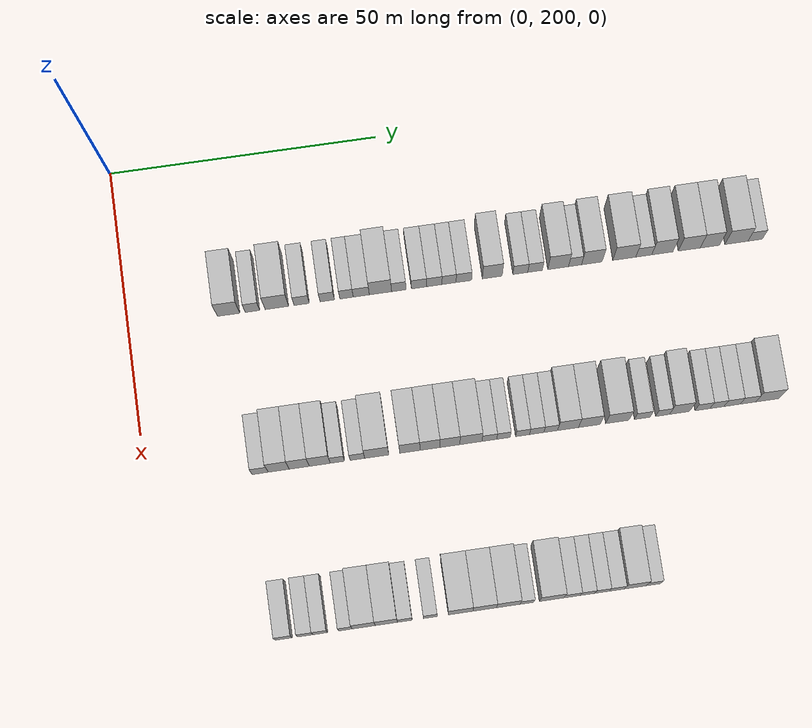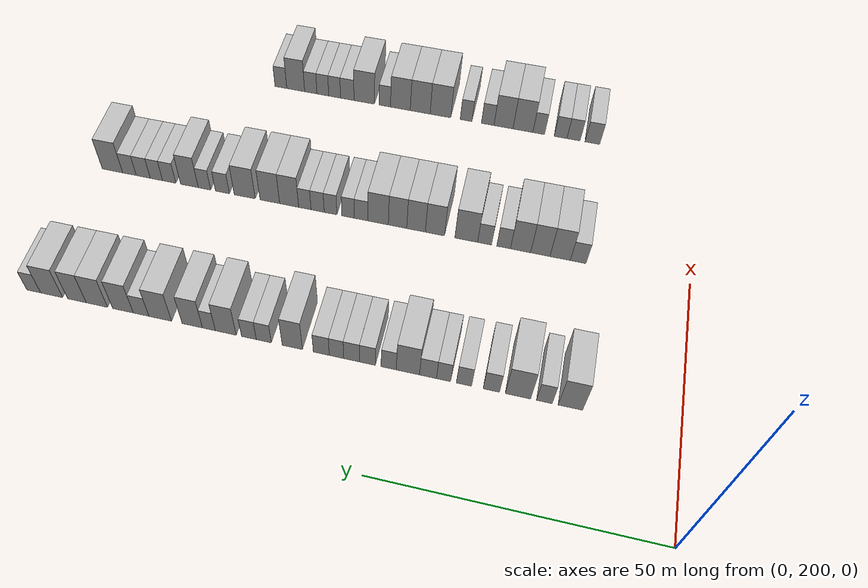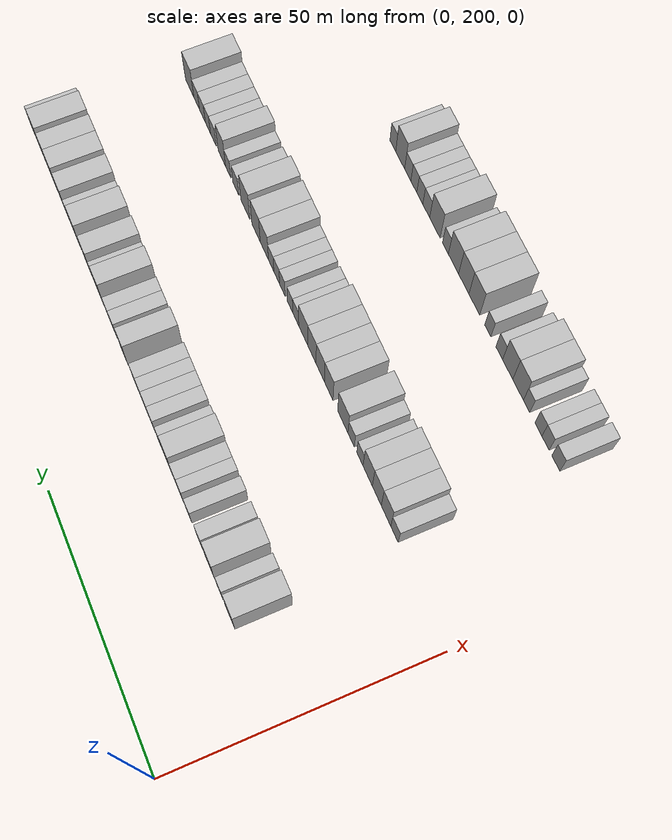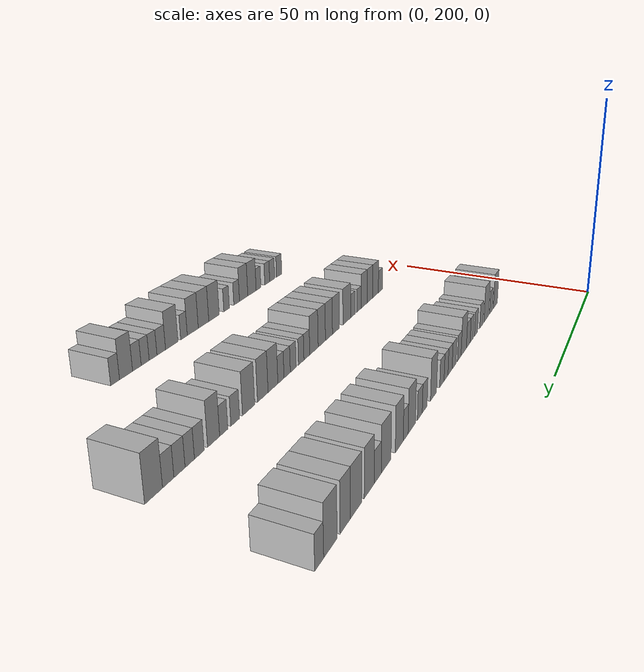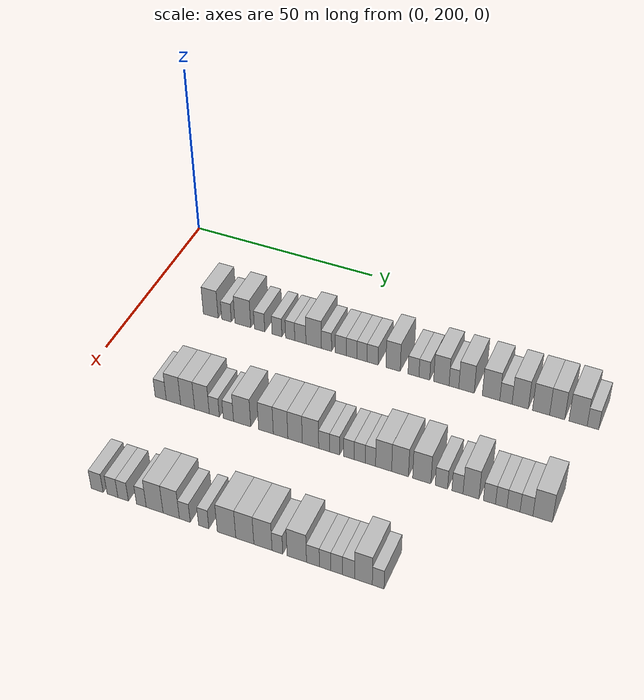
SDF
<sdf version="1.6">
 <world name="default">
  <model name="building_166">
   <static>1</static>
   <pose>25.0000 218.6222 0 0.000000 0.000000 0.000000</pose>
   <link name="link">
    <pose>0 0 4.50 0 0 0</pose>
    <collision name="collision"><geometry><box><size>10.0000 4.1430 9.0000</size></box></geometry></collision>
    <visual name="visual">
     <cast_shadows>0</cast_shadows>
     <geometry><box><size>10.0000 4.1430 9.0000</size></box></geometry>
     <material>
      <script>
       <uri>model://HANNAS_wall/materials/scripts</uri>
       <uri>model://HANNAS_wall/materials/textures</uri>
       <name>vrc/HANNAS_wall</name>
      </script>
     </material>
    </visual>
   </link>
  </model>
  <model name="building_167">
   <static>1</static>
   <pose>25.0000 223.0322 0 0.000000 0.000000 0.000000</pose>
   <link name="link">
    <pose>0 0 3.00 0 0 0</pose>
    <collision name="collision"><geometry><box><size>10.0000 2.6770 6.0000</size></box></geometry></collision>
    <visual name="visual">
     <cast_shadows>0</cast_shadows>
     <geometry><box><size>10.0000 2.6770 6.0000</size></box></geometry>
     <material>
      <script>
       <uri>model://HANNAS_wall/materials/scripts</uri>
       <uri>model://HANNAS_wall/materials/textures</uri>
       <name>vrc/HANNAS_wall</name>
      </script>
     </material>
    </visual>
   </link>
  </model>
  <model name="building_168">
   <static>1</static>
   <pose>25.0000 227.5489 0 0.000000 0.000000 0.000000</pose>
   <link name="link">
    <pose>0 0 4.50 0 0 0</pose>
    <collision name="collision"><geometry><box><size>10.0000 4.3564 9.0000</size></box></geometry></collision>
    <visual name="visual">
     <cast_shadows>0</cast_shadows>
     <geometry><box><size>10.0000 4.3564 9.0000</size></box></geometry>
     <material>
      <script>
       <uri>model://HANNAS_wall/materials/scripts</uri>
       <uri>model://HANNAS_wall/materials/textures</uri>
       <name>vrc/HANNAS_wall</name>
      </script>
     </material>
    </visual>
   </link>
  </model>
  <model name="building_169">
   <static>1</static>
   <pose>25.0000 232.1427 0 0.000000 0.000000 0.000000</pose>
   <link name="link">
    <pose>0 0 3.00 0 0 0</pose>
    <collision name="collision"><geometry><box><size>10.0000 2.8312 6.0000</size></box></geometry></collision>
    <visual name="visual">
     <cast_shadows>0</cast_shadows>
     <geometry><box><size>10.0000 2.8312 6.0000</size></box></geometry>
     <material>
      <script>
       <uri>model://HANNAS_wall/materials/scripts</uri>
       <uri>model://HANNAS_wall/materials/textures</uri>
       <name>vrc/HANNAS_wall</name>
      </script>
     </material>
    </visual>
   </link>
  </model>
  <model name="building_170">
   <static>1</static>
   <pose>25.0000 236.8923 0 0.000000 0.000000 0.000000</pose>
   <link name="link">
    <pose>0 0 3.00 0 0 0</pose>
    <collision name="collision"><geometry><box><size>10.0000 2.6681 6.0000</size></box></geometry></collision>
    <visual name="visual">
     <cast_shadows>0</cast_shadows>
     <geometry><box><size>10.0000 2.6681 6.0000</size></box></geometry>
     <material>
      <script>
       <uri>model://HANNAS_wall/materials/scripts</uri>
       <uri>model://HANNAS_wall/materials/textures</uri>
       <name>vrc/HANNAS_wall</name>
      </script>
     </material>
    </visual>
   </link>
  </model>
  <model name="building_171">
   <static>1</static>
   <pose>25.0000 240.4660 0 0.000000 0.000000 0.000000</pose>
   <link name="link">
    <pose>0 0 3.00 0 0 0</pose>
    <collision name="collision"><geometry><box><size>10.0000 2.4793 6.0000</size></box></geometry></collision>
    <visual name="visual">
     <cast_shadows>0</cast_shadows>
     <geometry><box><size>10.0000 2.4793 6.0000</size></box></geometry>
     <material>
      <script>
       <uri>model://HANNAS_wall/materials/scripts</uri>
       <uri>model://HANNAS_wall/materials/textures</uri>
       <name>vrc/HANNAS_wall</name>
      </script>
     </material>
    </visual>
   </link>
  </model>
  <model name="building_172">
   <static>1</static>
   <pose>25.0000 243.2002 0 0.000000 0.000000 0.000000</pose>
   <link name="link">
    <pose>0 0 3.00 0 0 0</pose>
    <collision name="collision"><geometry><box><size>10.0000 2.9892 6.0000</size></box></geometry></collision>
    <visual name="visual">
     <cast_shadows>0</cast_shadows>
     <geometry><box><size>10.0000 2.9892 6.0000</size></box></geometry>
     <material>
      <script>
       <uri>model://HANNAS_wall/materials/scripts</uri>
       <uri>model://HANNAS_wall/materials/textures</uri>
       <name>vrc/HANNAS_wall</name>
      </script>
     </material>
    </visual>
   </link>
  </model>
  <model name="building_173">
   <static>1</static>
   <pose>25.0000 246.7606 0 0.000000 0.000000 0.000000</pose>
   <link name="link">
    <pose>0 0 4.50 0 0 0</pose>
    <collision name="collision"><geometry><box><size>10.0000 4.1317 9.0000</size></box></geometry></collision>
    <visual name="visual">
     <cast_shadows>0</cast_shadows>
     <geometry><box><size>10.0000 4.1317 9.0000</size></box></geometry>
     <material>
      <script>
       <uri>model://HANNAS_wall/materials/scripts</uri>
       <uri>model://HANNAS_wall/materials/textures</uri>
       <name>vrc/HANNAS_wall</name>
      </script>
     </material>
    </visual>
   </link>
  </model>
  <model name="building_174">
   <static>1</static>
   <pose>25.0000 250.1740 0 0.000000 0.000000 0.000000</pose>
   <link name="link">
    <pose>0 0 3.00 0 0 0</pose>
    <collision name="collision"><geometry><box><size>10.0000 2.6950 6.0000</size></box></geometry></collision>
    <visual name="visual">
     <cast_shadows>0</cast_shadows>
     <geometry><box><size>10.0000 2.6950 6.0000</size></box></geometry>
     <material>
      <script>
       <uri>model://HANNAS_wall/materials/scripts</uri>
       <uri>model://HANNAS_wall/materials/textures</uri>
       <name>vrc/HANNAS_wall</name>
      </script>
     </material>
    </visual>
   </link>
  </model>
  <model name="building_175">
   <static>1</static>
   <pose>25.0000 253.9454 0 0.000000 0.000000 0.000000</pose>
   <link name="link">
    <pose>0 0 3.00 0 0 0</pose>
    <collision name="collision"><geometry><box><size>10.0000 2.8477 6.0000</size></box></geometry></collision>
    <visual name="visual">
     <cast_shadows>0</cast_shadows>
     <geometry><box><size>10.0000 2.8477 6.0000</size></box></geometry>
     <material>
      <script>
       <uri>model://HANNAS_wall/materials/scripts</uri>
       <uri>model://HANNAS_wall/materials/textures</uri>
       <name>vrc/HANNAS_wall</name>
      </script>
     </material>
    </visual>
   </link>
  </model>
  <model name="building_176">
   <static>1</static>
   <pose>25.0000 256.7983 0 0.000000 0.000000 0.000000</pose>
   <link name="link">
    <pose>0 0 3.00 0 0 0</pose>
    <collision name="collision"><geometry><box><size>10.0000 2.8579 6.0000</size></box></geometry></collision>
    <visual name="visual">
     <cast_shadows>0</cast_shadows>
     <geometry><box><size>10.0000 2.8579 6.0000</size></box></geometry>
     <material>
      <script>
       <uri>model://HANNAS_wall/materials/scripts</uri>
       <uri>model://HANNAS_wall/materials/textures</uri>
       <name>vrc/HANNAS_wall</name>
      </script>
     </material>
    </visual>
   </link>
  </model>
  <model name="building_177">
   <static>1</static>
   <pose>25.0000 259.5301 0 0.000000 0.000000 0.000000</pose>
   <link name="link">
    <pose>0 0 3.00 0 0 0</pose>
    <collision name="collision"><geometry><box><size>10.0000 2.6057 6.0000</size></box></geometry></collision>
    <visual name="visual">
     <cast_shadows>0</cast_shadows>
     <geometry><box><size>10.0000 2.6057 6.0000</size></box></geometry>
     <material>
      <script>
       <uri>model://HANNAS_wall/materials/scripts</uri>
       <uri>model://HANNAS_wall/materials/textures</uri>
       <name>vrc/HANNAS_wall</name>
      </script>
     </material>
    </visual>
   </link>
  </model>
  <model name="building_178">
   <static>1</static>
   <pose>25.0000 262.2731 0 0.000000 0.000000 0.000000</pose>
   <link name="link">
    <pose>0 0 3.00 0 0 0</pose>
    <collision name="collision"><geometry><box><size>10.0000 2.8803 6.0000</size></box></geometry></collision>
    <visual name="visual">
     <cast_shadows>0</cast_shadows>
     <geometry><box><size>10.0000 2.8803 6.0000</size></box></geometry>
     <material>
      <script>
       <uri>model://HANNAS_wall/materials/scripts</uri>
       <uri>model://HANNAS_wall/materials/textures</uri>
       <name>vrc/HANNAS_wall</name>
      </script>
     </material>
    </visual>
   </link>
  </model>
  <model name="building_179">
   <static>1</static>
   <pose>25.0000 267.5606 0 0.000000 0.000000 0.000000</pose>
   <link name="link">
    <pose>0 0 4.50 0 0 0</pose>
    <collision name="collision"><geometry><box><size>10.0000 3.6946 9.0000</size></box></geometry></collision>
    <visual name="visual">
     <cast_shadows>0</cast_shadows>
     <geometry><box><size>10.0000 3.6946 9.0000</size></box></geometry>
     <material>
      <script>
       <uri>model://HANNAS_wall/materials/scripts</uri>
       <uri>model://HANNAS_wall/materials/textures</uri>
       <name>vrc/HANNAS_wall</name>
      </script>
     </material>
    </visual>
   </link>
  </model>
  <model name="building_180">
   <static>1</static>
   <pose>25.0000 272.7976 0 0.000000 0.000000 0.000000</pose>
   <link name="link">
    <pose>0 0 3.00 0 0 0</pose>
    <collision name="collision"><geometry><box><size>10.0000 2.7793 6.0000</size></box></geometry></collision>
    <visual name="visual">
     <cast_shadows>0</cast_shadows>
     <geometry><box><size>10.0000 2.7793 6.0000</size></box></geometry>
     <material>
      <script>
       <uri>model://HANNAS_wall/materials/scripts</uri>
       <uri>model://HANNAS_wall/materials/textures</uri>
       <name>vrc/HANNAS_wall</name>
      </script>
     </material>
    </visual>
   </link>
  </model>
  <model name="building_181">
   <static>1</static>
   <pose>25.0000 275.5544 0 0.000000 0.000000 0.000000</pose>
   <link name="link">
    <pose>0 0 3.00 0 0 0</pose>
    <collision name="collision"><geometry><box><size>10.0000 2.7344 6.0000</size></box></geometry></collision>
    <visual name="visual">
     <cast_shadows>0</cast_shadows>
     <geometry><box><size>10.0000 2.7344 6.0000</size></box></geometry>
     <material>
      <script>
       <uri>model://HANNAS_wall/materials/scripts</uri>
       <uri>model://HANNAS_wall/materials/textures</uri>
       <name>vrc/HANNAS_wall</name>
      </script>
     </material>
    </visual>
   </link>
  </model>
  <model name="building_182">
   <static>1</static>
   <pose>25.0000 279.8623 0 0.000000 0.000000 0.000000</pose>
   <link name="link">
    <pose>0 0 4.50 0 0 0</pose>
    <collision name="collision"><geometry><box><size>10.0000 3.8812 9.0000</size></box></geometry></collision>
    <visual name="visual">
     <cast_shadows>0</cast_shadows>
     <geometry><box><size>10.0000 3.8812 9.0000</size></box></geometry>
     <material>
      <script>
       <uri>model://HANNAS_wall/materials/scripts</uri>
       <uri>model://HANNAS_wall/materials/textures</uri>
       <name>vrc/HANNAS_wall</name>
      </script>
     </material>
    </visual>
   </link>
  </model>
  <model name="building_183">
   <static>1</static>
   <pose>25.0000 283.0174 0 0.000000 0.000000 0.000000</pose>
   <link name="link">
    <pose>0 0 3.00 0 0 0</pose>
    <collision name="collision"><geometry><box><size>10.0000 2.4290 6.0000</size></box></geometry></collision>
    <visual name="visual">
     <cast_shadows>0</cast_shadows>
     <geometry><box><size>10.0000 2.4290 6.0000</size></box></geometry>
     <material>
      <script>
       <uri>model://HANNAS_wall/materials/scripts</uri>
       <uri>model://HANNAS_wall/materials/textures</uri>
       <name>vrc/HANNAS_wall</name>
      </script>
     </material>
    </visual>
   </link>
  </model>
  <model name="building_184">
   <static>1</static>
   <pose>25.0000 286.1537 0 0.000000 0.000000 0.000000</pose>
   <link name="link">
    <pose>0 0 4.50 0 0 0</pose>
    <collision name="collision"><geometry><box><size>10.0000 3.8438 9.0000</size></box></geometry></collision>
    <visual name="visual">
     <cast_shadows>0</cast_shadows>
     <geometry><box><size>10.0000 3.8438 9.0000</size></box></geometry>
     <material>
      <script>
       <uri>model://HANNAS_wall/materials/scripts</uri>
       <uri>model://HANNAS_wall/materials/textures</uri>
       <name>vrc/HANNAS_wall</name>
      </script>
     </material>
    </visual>
   </link>
  </model>
  <model name="building_185">
   <static>1</static>
   <pose>25.0000 292.2350 0 0.000000 0.000000 0.000000</pose>
   <link name="link">
    <pose>0 0 4.50 0 0 0</pose>
    <collision name="collision"><geometry><box><size>10.0000 4.3187 9.0000</size></box></geometry></collision>
    <visual name="visual">
     <cast_shadows>0</cast_shadows>
     <geometry><box><size>10.0000 4.3187 9.0000</size></box></geometry>
     <material>
      <script>
       <uri>model://HANNAS_wall/materials/scripts</uri>
       <uri>model://HANNAS_wall/materials/textures</uri>
       <name>vrc/HANNAS_wall</name>
      </script>
     </material>
    </visual>
   </link>
  </model>
  <model name="building_186">
   <static>1</static>
   <pose>25.0000 295.8857 0 0.000000 0.000000 0.000000</pose>
   <link name="link">
    <pose>0 0 3.00 0 0 0</pose>
    <collision name="collision"><geometry><box><size>10.0000 2.9826 6.0000</size></box></geometry></collision>
    <visual name="visual">
     <cast_shadows>0</cast_shadows>
     <geometry><box><size>10.0000 2.9826 6.0000</size></box></geometry>
     <material>
      <script>
       <uri>model://HANNAS_wall/materials/scripts</uri>
       <uri>model://HANNAS_wall/materials/textures</uri>
       <name>vrc/HANNAS_wall</name>
      </script>
     </material>
    </visual>
   </link>
  </model>
  <model name="building_187">
   <static>1</static>
   <pose>25.0000 299.3654 0 0.000000 0.000000 0.000000</pose>
   <link name="link">
    <pose>0 0 4.50 0 0 0</pose>
    <collision name="collision"><geometry><box><size>10.0000 3.9769 9.0000</size></box></geometry></collision>
    <visual name="visual">
     <cast_shadows>0</cast_shadows>
     <geometry><box><size>10.0000 3.9769 9.0000</size></box></geometry>
     <material>
      <script>
       <uri>model://HANNAS_wall/materials/scripts</uri>
       <uri>model://HANNAS_wall/materials/textures</uri>
       <name>vrc/HANNAS_wall</name>
      </script>
     </material>
    </visual>
   </link>
  </model>
  <model name="building_188">
   <static>1</static>
   <pose>25.0000 304.4196 0 0.000000 0.000000 0.000000</pose>
   <link name="link">
    <pose>0 0 4.50 0 0 0</pose>
    <collision name="collision"><geometry><box><size>10.0000 4.1314 9.0000</size></box></geometry></collision>
    <visual name="visual">
     <cast_shadows>0</cast_shadows>
     <geometry><box><size>10.0000 4.1314 9.0000</size></box></geometry>
     <material>
      <script>
       <uri>model://HANNAS_wall/materials/scripts</uri>
       <uri>model://HANNAS_wall/materials/textures</uri>
       <name>vrc/HANNAS_wall</name>
      </script>
     </material>
    </visual>
   </link>
  </model>
  <model name="building_189">
   <static>1</static>
   <pose>25.0000 308.2958 0 0.000000 0.000000 0.000000</pose>
   <link name="link">
    <pose>0 0 4.50 0 0 0</pose>
    <collision name="collision"><geometry><box><size>10.0000 3.6211 9.0000</size></box></geometry></collision>
    <visual name="visual">
     <cast_shadows>0</cast_shadows>
     <geometry><box><size>10.0000 3.6211 9.0000</size></box></geometry>
     <material>
      <script>
       <uri>model://HANNAS_wall/materials/scripts</uri>
       <uri>model://HANNAS_wall/materials/textures</uri>
       <name>vrc/HANNAS_wall</name>
      </script>
     </material>
    </visual>
   </link>
  </model>
  <model name="building_190">
   <static>1</static>
   <pose>25.0000 313.2651 0 0.000000 0.000000 0.000000</pose>
   <link name="link">
    <pose>0 0 4.50 0 0 0</pose>
    <collision name="collision"><geometry><box><size>10.0000 4.3174 9.0000</size></box></geometry></collision>
    <visual name="visual">
     <cast_shadows>0</cast_shadows>
     <geometry><box><size>10.0000 4.3174 9.0000</size></box></geometry>
     <material>
      <script>
       <uri>model://HANNAS_wall/materials/scripts</uri>
       <uri>model://HANNAS_wall/materials/textures</uri>
       <name>vrc/HANNAS_wall</name>
      </script>
     </material>
    </visual>
   </link>
  </model>
  <model name="building_191">
   <static>1</static>
   <pose>25.0000 316.7909 0 0.000000 0.000000 0.000000</pose>
   <link name="link">
    <pose>0 0 3.00 0 0 0</pose>
    <collision name="collision"><geometry><box><size>10.0000 2.7342 6.0000</size></box></geometry></collision>
    <visual name="visual">
     <cast_shadows>0</cast_shadows>
     <geometry><box><size>10.0000 2.7342 6.0000</size></box></geometry>
     <material>
      <script>
       <uri>model://HANNAS_wall/materials/scripts</uri>
       <uri>model://HANNAS_wall/materials/textures</uri>
       <name>vrc/HANNAS_wall</name>
      </script>
     </material>
    </visual>
   </link>
  </model>
  <model name="building_386">
   <static>1</static>
   <pose>55.0000 220.6845 0 0.000000 0.000000 0.000000</pose>
   <link name="link">
    <pose>0 0 3.00 0 0 0</pose>
    <collision name="collision"><geometry><box><size>10.0000 2.9409 6.0000</size></box></geometry></collision>
    <visual name="visual">
     <cast_shadows>0</cast_shadows>
     <geometry><box><size>10.0000 2.9409 6.0000</size></box></geometry>
     <material>
      <script>
       <uri>model://HANNAS_wall/materials/scripts</uri>
       <uri>model://HANNAS_wall/materials/textures</uri>
       <name>vrc/HANNAS_wall</name>
      </script>
     </material>
    </visual>
   </link>
  </model>
  <model name="building_387">
   <static>1</static>
   <pose>55.0000 224.0638 0 0.000000 0.000000 0.000000</pose>
   <link name="link">
    <pose>0 0 4.50 0 0 0</pose>
    <collision name="collision"><geometry><box><size>10.0000 3.8177 9.0000</size></box></geometry></collision>
    <visual name="visual">
     <cast_shadows>0</cast_shadows>
     <geometry><box><size>10.0000 3.8177 9.0000</size></box></geometry>
     <material>
      <script>
       <uri>model://HANNAS_wall/materials/scripts</uri>
       <uri>model://HANNAS_wall/materials/textures</uri>
       <name>vrc/HANNAS_wall</name>
      </script>
     </material>
    </visual>
   </link>
  </model>
  <model name="building_388">
   <static>1</static>
   <pose>55.0000 227.7985 0 0.000000 0.000000 0.000000</pose>
   <link name="link">
    <pose>0 0 4.50 0 0 0</pose>
    <collision name="collision"><geometry><box><size>10.0000 3.6518 9.0000</size></box></geometry></collision>
    <visual name="visual">
     <cast_shadows>0</cast_shadows>
     <geometry><box><size>10.0000 3.6518 9.0000</size></box></geometry>
     <material>
      <script>
       <uri>model://HANNAS_wall/materials/scripts</uri>
       <uri>model://HANNAS_wall/materials/textures</uri>
       <name>vrc/HANNAS_wall</name>
      </script>
     </material>
    </visual>
   </link>
  </model>
  <model name="building_389">
   <static>1</static>
   <pose>55.0000 231.5324 0 0.000000 0.000000 0.000000</pose>
   <link name="link">
    <pose>0 0 4.50 0 0 0</pose>
    <collision name="collision"><geometry><box><size>10.0000 3.8160 9.0000</size></box></geometry></collision>
    <visual name="visual">
     <cast_shadows>0</cast_shadows>
     <geometry><box><size>10.0000 3.8160 9.0000</size></box></geometry>
     <material>
      <script>
       <uri>model://HANNAS_wall/materials/scripts</uri>
       <uri>model://HANNAS_wall/materials/textures</uri>
       <name>vrc/HANNAS_wall</name>
      </script>
     </material>
    </visual>
   </link>
  </model>
  <model name="building_390">
   <static>1</static>
   <pose>55.0000 234.7448 0 0.000000 0.000000 0.000000</pose>
   <link name="link">
    <pose>0 0 3.00 0 0 0</pose>
    <collision name="collision"><geometry><box><size>10.0000 2.6088 6.0000</size></box></geometry></collision>
    <visual name="visual">
     <cast_shadows>0</cast_shadows>
     <geometry><box><size>10.0000 2.6088 6.0000</size></box></geometry>
     <material>
      <script>
       <uri>model://HANNAS_wall/materials/scripts</uri>
       <uri>model://HANNAS_wall/materials/textures</uri>
       <name>vrc/HANNAS_wall</name>
      </script>
     </material>
    </visual>
   </link>
  </model>
  <model name="building_391">
   <static>1</static>
   <pose>55.0000 238.3835 0 0.000000 0.000000 0.000000</pose>
   <link name="link">
    <pose>0 0 3.00 0 0 0</pose>
    <collision name="collision"><geometry><box><size>10.0000 2.6685 6.0000</size></box></geometry></collision>
    <visual name="visual">
     <cast_shadows>0</cast_shadows>
     <geometry><box><size>10.0000 2.6685 6.0000</size></box></geometry>
     <material>
      <script>
       <uri>model://HANNAS_wall/materials/scripts</uri>
       <uri>model://HANNAS_wall/materials/textures</uri>
       <name>vrc/HANNAS_wall</name>
      </script>
     </material>
    </visual>
   </link>
  </model>
  <model name="building_392">
   <static>1</static>
   <pose>55.0000 241.9121 0 0.000000 0.000000 0.000000</pose>
   <link name="link">
    <pose>0 0 4.50 0 0 0</pose>
    <collision name="collision"><geometry><box><size>10.0000 4.3886 9.0000</size></box></geometry></collision>
    <visual name="visual">
     <cast_shadows>0</cast_shadows>
     <geometry><box><size>10.0000 4.3886 9.0000</size></box></geometry>
     <material>
      <script>
       <uri>model://HANNAS_wall/materials/scripts</uri>
       <uri>model://HANNAS_wall/materials/textures</uri>
       <name>vrc/HANNAS_wall</name>
      </script>
     </material>
    </visual>
   </link>
  </model>
  <model name="building_393">
   <static>1</static>
   <pose>55.0000 247.9670 0 0.000000 0.000000 0.000000</pose>
   <link name="link">
    <pose>0 0 4.50 0 0 0</pose>
    <collision name="collision"><geometry><box><size>10.0000 3.7211 9.0000</size></box></geometry></collision>
    <visual name="visual">
     <cast_shadows>0</cast_shadows>
     <geometry><box><size>10.0000 3.7211 9.0000</size></box></geometry>
     <material>
      <script>
       <uri>model://HANNAS_wall/materials/scripts</uri>
       <uri>model://HANNAS_wall/materials/textures</uri>
       <name>vrc/HANNAS_wall</name>
      </script>
     </material>
    </visual>
   </link>
  </model>
  <model name="building_394">
   <static>1</static>
   <pose>55.0000 251.6501 0 0.000000 0.000000 0.000000</pose>
   <link name="link">
    <pose>0 0 4.50 0 0 0</pose>
    <collision name="collision"><geometry><box><size>10.0000 3.6452 9.0000</size></box></geometry></collision>
    <visual name="visual">
     <cast_shadows>0</cast_shadows>
     <geometry><box><size>10.0000 3.6452 9.0000</size></box></geometry>
     <material>
      <script>
       <uri>model://HANNAS_wall/materials/scripts</uri>
       <uri>model://HANNAS_wall/materials/textures</uri>
       <name>vrc/HANNAS_wall</name>
      </script>
     </material>
    </visual>
   </link>
  </model>
  <model name="building_395">
   <static>1</static>
   <pose>55.0000 255.2797 0 0.000000 0.000000 0.000000</pose>
   <link name="link">
    <pose>0 0 4.50 0 0 0</pose>
    <collision name="collision"><geometry><box><size>10.0000 3.6140 9.0000</size></box></geometry></collision>
    <visual name="visual">
     <cast_shadows>0</cast_shadows>
     <geometry><box><size>10.0000 3.6140 9.0000</size></box></geometry>
     <material>
      <script>
       <uri>model://HANNAS_wall/materials/scripts</uri>
       <uri>model://HANNAS_wall/materials/textures</uri>
       <name>vrc/HANNAS_wall</name>
      </script>
     </material>
    </visual>
   </link>
  </model>
  <model name="building_396">
   <static>1</static>
   <pose>55.0000 259.1114 0 0.000000 0.000000 0.000000</pose>
   <link name="link">
    <pose>0 0 4.50 0 0 0</pose>
    <collision name="collision"><geometry><box><size>10.0000 4.0493 9.0000</size></box></geometry></collision>
    <visual name="visual">
     <cast_shadows>0</cast_shadows>
     <geometry><box><size>10.0000 4.0493 9.0000</size></box></geometry>
     <material>
      <script>
       <uri>model://HANNAS_wall/materials/scripts</uri>
       <uri>model://HANNAS_wall/materials/textures</uri>
       <name>vrc/HANNAS_wall</name>
      </script>
     </material>
    </visual>
   </link>
  </model>
  <model name="building_397">
   <static>1</static>
   <pose>55.0000 262.4866 0 0.000000 0.000000 0.000000</pose>
   <link name="link">
    <pose>0 0 3.00 0 0 0</pose>
    <collision name="collision"><geometry><box><size>10.0000 2.7010 6.0000</size></box></geometry></collision>
    <visual name="visual">
     <cast_shadows>0</cast_shadows>
     <geometry><box><size>10.0000 2.7010 6.0000</size></box></geometry>
     <material>
      <script>
       <uri>model://HANNAS_wall/materials/scripts</uri>
       <uri>model://HANNAS_wall/materials/textures</uri>
       <name>vrc/HANNAS_wall</name>
      </script>
     </material>
    </visual>
   </link>
  </model>
  <model name="building_398">
   <static>1</static>
   <pose>55.0000 265.0640 0 0.000000 0.000000 0.000000</pose>
   <link name="link">
    <pose>0 0 3.00 0 0 0</pose>
    <collision name="collision"><geometry><box><size>10.0000 2.4538 6.0000</size></box></geometry></collision>
    <visual name="visual">
     <cast_shadows>0</cast_shadows>
     <geometry><box><size>10.0000 2.4538 6.0000</size></box></geometry>
     <material>
      <script>
       <uri>model://HANNAS_wall/materials/scripts</uri>
       <uri>model://HANNAS_wall/materials/textures</uri>
       <name>vrc/HANNAS_wall</name>
      </script>
     </material>
    </visual>
   </link>
  </model>
  <model name="building_399">
   <static>1</static>
   <pose>55.0000 268.5587 0 0.000000 0.000000 0.000000</pose>
   <link name="link">
    <pose>0 0 3.00 0 0 0</pose>
    <collision name="collision"><geometry><box><size>10.0000 2.5356 6.0000</size></box></geometry></collision>
    <visual name="visual">
     <cast_shadows>0</cast_shadows>
     <geometry><box><size>10.0000 2.5356 6.0000</size></box></geometry>
     <material>
      <script>
       <uri>model://HANNAS_wall/materials/scripts</uri>
       <uri>model://HANNAS_wall/materials/textures</uri>
       <name>vrc/HANNAS_wall</name>
      </script>
     </material>
    </visual>
   </link>
  </model>
  <model name="building_400">
   <static>1</static>
   <pose>55.0000 271.1538 0 0.000000 0.000000 0.000000</pose>
   <link name="link">
    <pose>0 0 3.00 0 0 0</pose>
    <collision name="collision"><geometry><box><size>10.0000 2.6547 6.0000</size></box></geometry></collision>
    <visual name="visual">
     <cast_shadows>0</cast_shadows>
     <geometry><box><size>10.0000 2.6547 6.0000</size></box></geometry>
     <material>
      <script>
       <uri>model://HANNAS_wall/materials/scripts</uri>
       <uri>model://HANNAS_wall/materials/textures</uri>
       <name>vrc/HANNAS_wall</name>
      </script>
     </material>
    </visual>
   </link>
  </model>
  <model name="building_401">
   <static>1</static>
   <pose>55.0000 273.7311 0 0.000000 0.000000 0.000000</pose>
   <link name="link">
    <pose>0 0 3.00 0 0 0</pose>
    <collision name="collision"><geometry><box><size>10.0000 2.4999 6.0000</size></box></geometry></collision>
    <visual name="visual">
     <cast_shadows>0</cast_shadows>
     <geometry><box><size>10.0000 2.4999 6.0000</size></box></geometry>
     <material>
      <script>
       <uri>model://HANNAS_wall/materials/scripts</uri>
       <uri>model://HANNAS_wall/materials/textures</uri>
       <name>vrc/HANNAS_wall</name>
      </script>
     </material>
    </visual>
   </link>
  </model>
  <model name="building_402">
   <static>1</static>
   <pose>55.0000 276.9073 0 0.000000 0.000000 0.000000</pose>
   <link name="link">
    <pose>0 0 4.50 0 0 0</pose>
    <collision name="collision"><geometry><box><size>10.0000 3.8527 9.0000</size></box></geometry></collision>
    <visual name="visual">
     <cast_shadows>0</cast_shadows>
     <geometry><box><size>10.0000 3.8527 9.0000</size></box></geometry>
     <material>
      <script>
       <uri>model://HANNAS_wall/materials/scripts</uri>
       <uri>model://HANNAS_wall/materials/textures</uri>
       <name>vrc/HANNAS_wall</name>
      </script>
     </material>
    </visual>
   </link>
  </model>
  <model name="building_403">
   <static>1</static>
   <pose>55.0000 280.8255 0 0.000000 0.000000 0.000000</pose>
   <link name="link">
    <pose>0 0 4.50 0 0 0</pose>
    <collision name="collision"><geometry><box><size>10.0000 3.9836 9.0000</size></box></geometry></collision>
    <visual name="visual">
     <cast_shadows>0</cast_shadows>
     <geometry><box><size>10.0000 3.9836 9.0000</size></box></geometry>
     <material>
      <script>
       <uri>model://HANNAS_wall/materials/scripts</uri>
       <uri>model://HANNAS_wall/materials/textures</uri>
       <name>vrc/HANNAS_wall</name>
      </script>
     </material>
    </visual>
   </link>
  </model>
  <model name="building_404">
   <static>1</static>
   <pose>55.0000 285.9674 0 0.000000 0.000000 0.000000</pose>
   <link name="link">
    <pose>0 0 4.50 0 0 0</pose>
    <collision name="collision"><geometry><box><size>10.0000 4.3002 9.0000</size></box></geometry></collision>
    <visual name="visual">
     <cast_shadows>0</cast_shadows>
     <geometry><box><size>10.0000 4.3002 9.0000</size></box></geometry>
     <material>
      <script>
       <uri>model://HANNAS_wall/materials/scripts</uri>
       <uri>model://HANNAS_wall/materials/textures</uri>
       <name>vrc/HANNAS_wall</name>
      </script>
     </material>
    </visual>
   </link>
  </model>
  <model name="building_405">
   <static>1</static>
   <pose>55.0000 290.5615 0 0.000000 0.000000 0.000000</pose>
   <link name="link">
    <pose>0 0 3.00 0 0 0</pose>
    <collision name="collision"><geometry><box><size>10.0000 2.8879 6.0000</size></box></geometry></collision>
    <visual name="visual">
     <cast_shadows>0</cast_shadows>
     <geometry><box><size>10.0000 2.8879 6.0000</size></box></geometry>
     <material>
      <script>
       <uri>model://HANNAS_wall/materials/scripts</uri>
       <uri>model://HANNAS_wall/materials/textures</uri>
       <name>vrc/HANNAS_wall</name>
      </script>
     </material>
    </visual>
   </link>
  </model>
  <model name="building_406">
   <static>1</static>
   <pose>55.0000 294.2959 0 0.000000 0.000000 0.000000</pose>
   <link name="link">
    <pose>0 0 3.00 0 0 0</pose>
    <collision name="collision"><geometry><box><size>10.0000 2.5809 6.0000</size></box></geometry></collision>
    <visual name="visual">
     <cast_shadows>0</cast_shadows>
     <geometry><box><size>10.0000 2.5809 6.0000</size></box></geometry>
     <material>
      <script>
       <uri>model://HANNAS_wall/materials/scripts</uri>
       <uri>model://HANNAS_wall/materials/textures</uri>
       <name>vrc/HANNAS_wall</name>
      </script>
     </material>
    </visual>
   </link>
  </model>
  <model name="building_407">
   <static>1</static>
   <pose>55.0000 297.4259 0 0.000000 0.000000 0.000000</pose>
   <link name="link">
    <pose>0 0 4.50 0 0 0</pose>
    <collision name="collision"><geometry><box><size>10.0000 3.6790 9.0000</size></box></geometry></collision>
    <visual name="visual">
     <cast_shadows>0</cast_shadows>
     <geometry><box><size>10.0000 3.6790 9.0000</size></box></geometry>
     <material>
      <script>
       <uri>model://HANNAS_wall/materials/scripts</uri>
       <uri>model://HANNAS_wall/materials/textures</uri>
       <name>vrc/HANNAS_wall</name>
      </script>
     </material>
    </visual>
   </link>
  </model>
  <model name="building_408">
   <static>1</static>
   <pose>55.0000 301.6578 0 0.000000 0.000000 0.000000</pose>
   <link name="link">
    <pose>0 0 3.00 0 0 0</pose>
    <collision name="collision"><geometry><box><size>10.0000 2.7849 6.0000</size></box></geometry></collision>
    <visual name="visual">
     <cast_shadows>0</cast_shadows>
     <geometry><box><size>10.0000 2.7849 6.0000</size></box></geometry>
     <material>
      <script>
       <uri>model://HANNAS_wall/materials/scripts</uri>
       <uri>model://HANNAS_wall/materials/textures</uri>
       <name>vrc/HANNAS_wall</name>
      </script>
     </material>
    </visual>
   </link>
  </model>
  <model name="building_409">
   <static>1</static>
   <pose>55.0000 304.3447 0 0.000000 0.000000 0.000000</pose>
   <link name="link">
    <pose>0 0 3.00 0 0 0</pose>
    <collision name="collision"><geometry><box><size>10.0000 2.5888 6.0000</size></box></geometry></collision>
    <visual name="visual">
     <cast_shadows>0</cast_shadows>
     <geometry><box><size>10.0000 2.5888 6.0000</size></box></geometry>
     <material>
      <script>
       <uri>model://HANNAS_wall/materials/scripts</uri>
       <uri>model://HANNAS_wall/materials/textures</uri>
       <name>vrc/HANNAS_wall</name>
      </script>
     </material>
    </visual>
   </link>
  </model>
  <model name="building_410">
   <static>1</static>
   <pose>55.0000 307.1229 0 0.000000 0.000000 0.000000</pose>
   <link name="link">
    <pose>0 0 3.00 0 0 0</pose>
    <collision name="collision"><geometry><box><size>10.0000 2.9676 6.0000</size></box></geometry></collision>
    <visual name="visual">
     <cast_shadows>0</cast_shadows>
     <geometry><box><size>10.0000 2.9676 6.0000</size></box></geometry>
     <material>
      <script>
       <uri>model://HANNAS_wall/materials/scripts</uri>
       <uri>model://HANNAS_wall/materials/textures</uri>
       <name>vrc/HANNAS_wall</name>
      </script>
     </material>
    </visual>
   </link>
  </model>
  <model name="building_411">
   <static>1</static>
   <pose>55.0000 310.0540 0 0.000000 0.000000 0.000000</pose>
   <link name="link">
    <pose>0 0 3.00 0 0 0</pose>
    <collision name="collision"><geometry><box><size>10.0000 2.8946 6.0000</size></box></geometry></collision>
    <visual name="visual">
     <cast_shadows>0</cast_shadows>
     <geometry><box><size>10.0000 2.8946 6.0000</size></box></geometry>
     <material>
      <script>
       <uri>model://HANNAS_wall/materials/scripts</uri>
       <uri>model://HANNAS_wall/materials/textures</uri>
       <name>vrc/HANNAS_wall</name>
      </script>
     </material>
    </visual>
   </link>
  </model>
  <model name="building_412">
   <static>1</static>
   <pose>55.0000 313.6736 0 0.000000 0.000000 0.000000</pose>
   <link name="link">
    <pose>0 0 4.50 0 0 0</pose>
    <collision name="collision"><geometry><box><size>10.0000 4.3445 9.0000</size></box></geometry></collision>
    <visual name="visual">
     <cast_shadows>0</cast_shadows>
     <geometry><box><size>10.0000 4.3445 9.0000</size></box></geometry>
     <material>
      <script>
       <uri>model://HANNAS_wall/materials/scripts</uri>
       <uri>model://HANNAS_wall/materials/textures</uri>
       <name>vrc/HANNAS_wall</name>
      </script>
     </material>
    </visual>
   </link>
  </model>
  <model name="building_622">
   <static>1</static>
   <pose>85.0000 221.1541 0 0.000000 0.000000 0.000000</pose>
   <link name="link">
    <pose>0 0 3.00 0 0 0</pose>
    <collision name="collision"><geometry><box><size>10.0000 2.9992 6.0000</size></box></geometry></collision>
    <visual name="visual">
     <cast_shadows>0</cast_shadows>
     <geometry><box><size>10.0000 2.9992 6.0000</size></box></geometry>
     <material>
      <script>
       <uri>model://HANNAS_wall/materials/scripts</uri>
       <uri>model://HANNAS_wall/materials/textures</uri>
       <name>vrc/HANNAS_wall</name>
      </script>
     </material>
    </visual>
   </link>
  </model>
  <model name="building_623">
   <static>1</static>
   <pose>85.0000 225.0027 0 0.000000 0.000000 0.000000</pose>
   <link name="link">
    <pose>0 0 3.00 0 0 0</pose>
    <collision name="collision"><geometry><box><size>10.0000 2.6979 6.0000</size></box></geometry></collision>
    <visual name="visual">
     <cast_shadows>0</cast_shadows>
     <geometry><box><size>10.0000 2.6979 6.0000</size></box></geometry>
     <material>
      <script>
       <uri>model://HANNAS_wall/materials/scripts</uri>
       <uri>model://HANNAS_wall/materials/textures</uri>
       <name>vrc/HANNAS_wall</name>
      </script>
     </material>
    </visual>
   </link>
  </model>
  <model name="building_624">
   <static>1</static>
   <pose>85.0000 227.6578 0 0.000000 0.000000 0.000000</pose>
   <link name="link">
    <pose>0 0 3.00 0 0 0</pose>
    <collision name="collision"><geometry><box><size>10.0000 2.6124 6.0000</size></box></geometry></collision>
    <visual name="visual">
     <cast_shadows>0</cast_shadows>
     <geometry><box><size>10.0000 2.6124 6.0000</size></box></geometry>
     <material>
      <script>
       <uri>model://HANNAS_wall/materials/scripts</uri>
       <uri>model://HANNAS_wall/materials/textures</uri>
       <name>vrc/HANNAS_wall</name>
      </script>
     </material>
    </visual>
   </link>
  </model>
  <model name="building_625">
   <static>1</static>
   <pose>85.0000 232.1707 0 0.000000 0.000000 0.000000</pose>
   <link name="link">
    <pose>0 0 3.00 0 0 0</pose>
    <collision name="collision"><geometry><box><size>10.0000 2.4134 6.0000</size></box></geometry></collision>
    <visual name="visual">
     <cast_shadows>0</cast_shadows>
     <geometry><box><size>10.0000 2.4134 6.0000</size></box></geometry>
     <material>
      <script>
       <uri>model://HANNAS_wall/materials/scripts</uri>
       <uri>model://HANNAS_wall/materials/textures</uri>
       <name>vrc/HANNAS_wall</name>
      </script>
     </material>
    </visual>
   </link>
  </model>
  <model name="building_626">
   <static>1</static>
   <pose>85.0000 235.4446 0 0.000000 0.000000 0.000000</pose>
   <link name="link">
    <pose>0 0 4.50 0 0 0</pose>
    <collision name="collision"><geometry><box><size>10.0000 4.1343 9.0000</size></box></geometry></collision>
    <visual name="visual">
     <cast_shadows>0</cast_shadows>
     <geometry><box><size>10.0000 4.1343 9.0000</size></box></geometry>
     <material>
      <script>
       <uri>model://HANNAS_wall/materials/scripts</uri>
       <uri>model://HANNAS_wall/materials/textures</uri>
       <name>vrc/HANNAS_wall</name>
      </script>
     </material>
    </visual>
   </link>
  </model>
  <model name="building_627">
   <static>1</static>
   <pose>85.0000 239.4942 0 0.000000 0.000000 0.000000</pose>
   <link name="link">
    <pose>0 0 4.50 0 0 0</pose>
    <collision name="collision"><geometry><box><size>10.0000 3.9650 9.0000</size></box></geometry></collision>
    <visual name="visual">
     <cast_shadows>0</cast_shadows>
     <geometry><box><size>10.0000 3.9650 9.0000</size></box></geometry>
     <material>
      <script>
       <uri>model://HANNAS_wall/materials/scripts</uri>
       <uri>model://HANNAS_wall/materials/textures</uri>
       <name>vrc/HANNAS_wall</name>
      </script>
     </material>
    </visual>
   </link>
  </model>
  <model name="building_628">
   <static>1</static>
   <pose>85.0000 242.7916 0 0.000000 0.000000 0.000000</pose>
   <link name="link">
    <pose>0 0 3.00 0 0 0</pose>
    <collision name="collision"><geometry><box><size>10.0000 2.6298 6.0000</size></box></geometry></collision>
    <visual name="visual">
     <cast_shadows>0</cast_shadows>
     <geometry><box><size>10.0000 2.6298 6.0000</size></box></geometry>
     <material>
      <script>
       <uri>model://HANNAS_wall/materials/scripts</uri>
       <uri>model://HANNAS_wall/materials/textures</uri>
       <name>vrc/HANNAS_wall</name>
      </script>
     </material>
    </visual>
   </link>
  </model>
  <model name="building_629">
   <static>1</static>
   <pose>85.0000 247.3448 0 0.000000 0.000000 0.000000</pose>
   <link name="link">
    <pose>0 0 3.00 0 0 0</pose>
    <collision name="collision"><geometry><box><size>10.0000 2.4765 6.0000</size></box></geometry></collision>
    <visual name="visual">
     <cast_shadows>0</cast_shadows>
     <geometry><box><size>10.0000 2.4765 6.0000</size></box></geometry>
     <material>
      <script>
       <uri>model://HANNAS_wall/materials/scripts</uri>
       <uri>model://HANNAS_wall/materials/textures</uri>
       <name>vrc/HANNAS_wall</name>
      </script>
     </material>
    </visual>
   </link>
  </model>
  <model name="building_630">
   <static>1</static>
   <pose>85.0000 252.7795 0 0.000000 0.000000 0.000000</pose>
   <link name="link">
    <pose>0 0 4.50 0 0 0</pose>
    <collision name="collision"><geometry><box><size>10.0000 4.3930 9.0000</size></box></geometry></collision>
    <visual name="visual">
     <cast_shadows>0</cast_shadows>
     <geometry><box><size>10.0000 4.3930 9.0000</size></box></geometry>
     <material>
      <script>
       <uri>model://HANNAS_wall/materials/scripts</uri>
       <uri>model://HANNAS_wall/materials/textures</uri>
       <name>vrc/HANNAS_wall</name>
      </script>
     </material>
    </visual>
   </link>
  </model>
  <model name="building_631">
   <static>1</static>
   <pose>85.0000 257.0989 0 0.000000 0.000000 0.000000</pose>
   <link name="link">
    <pose>0 0 4.50 0 0 0</pose>
    <collision name="collision"><geometry><box><size>10.0000 4.2457 9.0000</size></box></geometry></collision>
    <visual name="visual">
     <cast_shadows>0</cast_shadows>
     <geometry><box><size>10.0000 4.2457 9.0000</size></box></geometry>
     <material>
      <script>
       <uri>model://HANNAS_wall/materials/scripts</uri>
       <uri>model://HANNAS_wall/materials/textures</uri>
       <name>vrc/HANNAS_wall</name>
      </script>
     </material>
    </visual>
   </link>
  </model>
  <model name="building_632">
   <static>1</static>
   <pose>85.0000 261.3508 0 0.000000 0.000000 0.000000</pose>
   <link name="link">
    <pose>0 0 4.50 0 0 0</pose>
    <collision name="collision"><geometry><box><size>10.0000 4.2579 9.0000</size></box></geometry></collision>
    <visual name="visual">
     <cast_shadows>0</cast_shadows>
     <geometry><box><size>10.0000 4.2579 9.0000</size></box></geometry>
     <material>
      <script>
       <uri>model://HANNAS_wall/materials/scripts</uri>
       <uri>model://HANNAS_wall/materials/textures</uri>
       <name>vrc/HANNAS_wall</name>
      </script>
     </material>
    </visual>
   </link>
  </model>
  <model name="building_633">
   <static>1</static>
   <pose>85.0000 264.7139 0 0.000000 0.000000 0.000000</pose>
   <link name="link">
    <pose>0 0 3.00 0 0 0</pose>
    <collision name="collision"><geometry><box><size>10.0000 2.4682 6.0000</size></box></geometry></collision>
    <visual name="visual">
     <cast_shadows>0</cast_shadows>
     <geometry><box><size>10.0000 2.4682 6.0000</size></box></geometry>
     <material>
      <script>
       <uri>model://HANNAS_wall/materials/scripts</uri>
       <uri>model://HANNAS_wall/materials/textures</uri>
       <name>vrc/HANNAS_wall</name>
      </script>
     </material>
    </visual>
   </link>
  </model>
  <model name="building_634">
   <static>1</static>
   <pose>85.0000 269.1686 0 0.000000 0.000000 0.000000</pose>
   <link name="link">
    <pose>0 0 4.50 0 0 0</pose>
    <collision name="collision"><geometry><box><size>10.0000 4.4413 9.0000</size></box></geometry></collision>
    <visual name="visual">
     <cast_shadows>0</cast_shadows>
     <geometry><box><size>10.0000 4.4413 9.0000</size></box></geometry>
     <material>
      <script>
       <uri>model://HANNAS_wall/materials/scripts</uri>
       <uri>model://HANNAS_wall/materials/textures</uri>
       <name>vrc/HANNAS_wall</name>
      </script>
     </material>
    </visual>
   </link>
  </model>
  <model name="building_635">
   <static>1</static>
   <pose>85.0000 272.8637 0 0.000000 0.000000 0.000000</pose>
   <link name="link">
    <pose>0 0 3.00 0 0 0</pose>
    <collision name="collision"><geometry><box><size>10.0000 2.9489 6.0000</size></box></geometry></collision>
    <visual name="visual">
     <cast_shadows>0</cast_shadows>
     <geometry><box><size>10.0000 2.9489 6.0000</size></box></geometry>
     <material>
      <script>
       <uri>model://HANNAS_wall/materials/scripts</uri>
       <uri>model://HANNAS_wall/materials/textures</uri>
       <name>vrc/HANNAS_wall</name>
      </script>
     </material>
    </visual>
   </link>
  </model>
  <model name="building_636">
   <static>1</static>
   <pose>85.0000 275.6340 0 0.000000 0.000000 0.000000</pose>
   <link name="link">
    <pose>0 0 3.00 0 0 0</pose>
    <collision name="collision"><geometry><box><size>10.0000 2.5918 6.0000</size></box></geometry></collision>
    <visual name="visual">
     <cast_shadows>0</cast_shadows>
     <geometry><box><size>10.0000 2.5918 6.0000</size></box></geometry>
     <material>
      <script>
       <uri>model://HANNAS_wall/materials/scripts</uri>
       <uri>model://HANNAS_wall/materials/textures</uri>
       <name>vrc/HANNAS_wall</name>
      </script>
     </material>
    </visual>
   </link>
  </model>
  <model name="building_637">
   <static>1</static>
   <pose>85.0000 278.2202 0 0.000000 0.000000 0.000000</pose>
   <link name="link">
    <pose>0 0 3.00 0 0 0</pose>
    <collision name="collision"><geometry><box><size>10.0000 2.5806 6.0000</size></box></geometry></collision>
    <visual name="visual">
     <cast_shadows>0</cast_shadows>
     <geometry><box><size>10.0000 2.5806 6.0000</size></box></geometry>
     <material>
      <script>
       <uri>model://HANNAS_wall/materials/scripts</uri>
       <uri>model://HANNAS_wall/materials/textures</uri>
       <name>vrc/HANNAS_wall</name>
      </script>
     </material>
    </visual>
   </link>
  </model>
  <model name="building_638">
   <static>1</static>
   <pose>85.0000 280.8699 0 0.000000 0.000000 0.000000</pose>
   <link name="link">
    <pose>0 0 3.00 0 0 0</pose>
    <collision name="collision"><geometry><box><size>10.0000 2.7187 6.0000</size></box></geometry></collision>
    <visual name="visual">
     <cast_shadows>0</cast_shadows>
     <geometry><box><size>10.0000 2.7187 6.0000</size></box></geometry>
     <material>
      <script>
       <uri>model://HANNAS_wall/materials/scripts</uri>
       <uri>model://HANNAS_wall/materials/textures</uri>
       <name>vrc/HANNAS_wall</name>
      </script>
     </material>
    </visual>
   </link>
  </model>
  <model name="building_639">
   <static>1</static>
   <pose>85.0000 284.2106 0 0.000000 0.000000 0.000000</pose>
   <link name="link">
    <pose>0 0 4.50 0 0 0</pose>
    <collision name="collision"><geometry><box><size>10.0000 3.9629 9.0000</size></box></geometry></collision>
    <visual name="visual">
     <cast_shadows>0</cast_shadows>
     <geometry><box><size>10.0000 3.9629 9.0000</size></box></geometry>
     <material>
      <script>
       <uri>model://HANNAS_wall/materials/scripts</uri>
       <uri>model://HANNAS_wall/materials/textures</uri>
       <name>vrc/HANNAS_wall</name>
      </script>
     </material>
    </visual>
   </link>
  </model>
  <model name="building_640">
   <static>1</static>
   <pose>85.0000 287.4931 0 0.000000 0.000000 0.000000</pose>
   <link name="link">
    <pose>0 0 3.00 0 0 0</pose>
    <collision name="collision"><geometry><box><size>10.0000 2.6020 6.0000</size></box></geometry></collision>
    <visual name="visual">
     <cast_shadows>0</cast_shadows>
     <geometry><box><size>10.0000 2.6020 6.0000</size></box></geometry>
     <material>
      <script>
       <uri>model://HANNAS_wall/materials/scripts</uri>
       <uri>model://HANNAS_wall/materials/textures</uri>
       <name>vrc/HANNAS_wall</name>
      </script>
     </material>
    </visual>
   </link>
  </model>
 </world>
</sdf>
